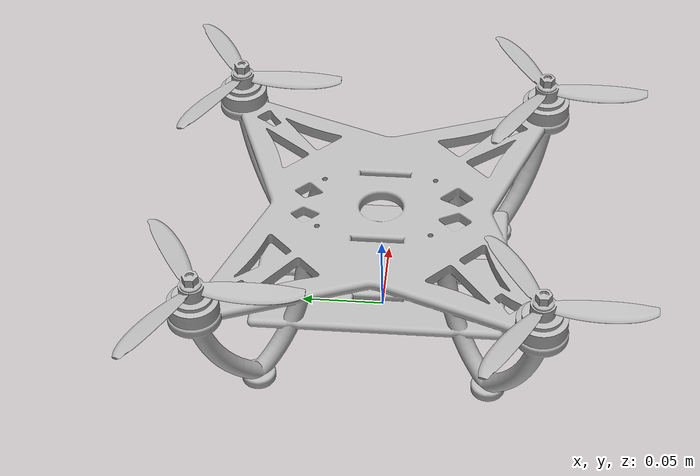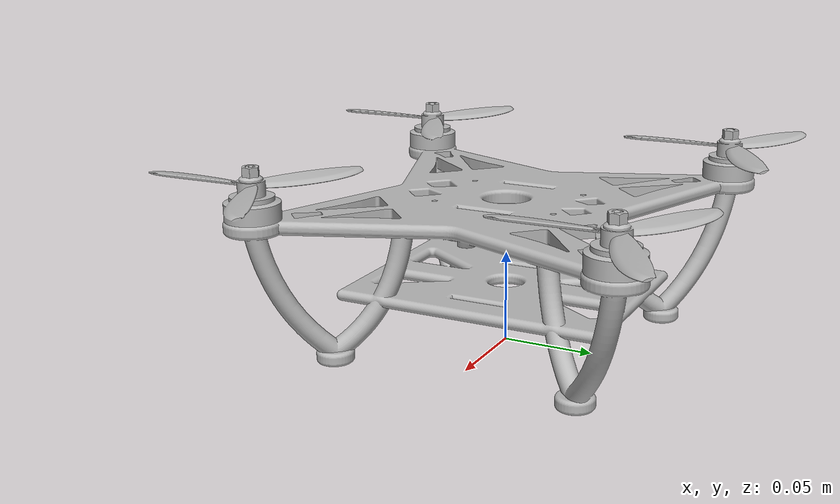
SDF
<sdf version='1.6'>
  <model name='quadrotor/quadrotor'>
    <link name='frame'>
      <pose frame=''>0 0 0 0 -0 0</pose>
      <inertial>
        <pose frame=''>-0.052259 0.052259 0.041994 0 -0 0</pose>
        <mass>0.129239</mass>
        <inertia>
          <ixx>0.0013316</ixx>
          <ixy>0.000389941</ixy>
          <ixz>-0.000283206</ixz>
          <iyy>0.0013303</iyy>
          <iyz>0.000284041</iyz>
          <izz>0.00219867</izz>
        </inertia>
      </inertial>
      <collision name='frame_collision'>
        <pose frame=''>-0.11 0.11 0 1.5708 -0 0</pose>
        <geometry>
          <mesh>
            <scale>0.001 0.001 0.001</scale>
            <uri>$(find quad_sim)/urdf/meshes/final_frame.stl</uri>
          </mesh>
        </geometry>
      </collision>
      <collision name='frame_fixed_joint_lump__propeller_holder1_collision_1'>
        <pose frame=''>0.095 -0.095 0.08 1.5708 -0 0</pose>
        <geometry>
          <mesh>
            <scale>0.001 0.001 0.001</scale>
            <uri>$(find quad_sim)/quad_sim/urdf/meshes/KV2540_Motor_Base.stl</uri>
          </mesh>
        </geometry>
      </collision>
      <collision name='frame_fixed_joint_lump__propeller_holder2_collision_2'>
        <pose frame=''>-0.095 0.095 0.08 1.5708 -0 0</pose>
        <geometry>
          <mesh>
            <scale>0.001 0.001 0.001</scale>
            <uri>$(find quad_sim)/urdf/meshes/KV2540_Motor_Base.stl</uri>
          </mesh>
        </geometry>
      </collision>
      <collision name='frame_fixed_joint_lump__propeller_holder3_collision_3'>
        <pose frame=''>0.095 0.095 0.08 1.5708 -0 0</pose>
        <geometry>
          <mesh>
            <scale>0.001 0.001 0.001</scale>
            <uri>$(find quad_sim)/urdf/meshes/KV2540_Motor_Base.stl</uri>
          </mesh>
        </geometry>
      </collision>
      <collision name='frame_fixed_joint_lump__propeller_holder4_collision_4'>
        <pose frame=''>-0.095 -0.095 0.08 1.5708 -0 0</pose>
        <geometry>
          <mesh>
            <scale>0.001 0.001 0.001</scale>
            <uri>$(find quad_sim)/urdf/meshes/KV2540_Motor_Base.stl</uri>
          </mesh>
        </geometry>
      </collision>
      <visual name='frame_visual'>
        <pose frame=''>-0.11 0.11 0 1.5708 -0 0</pose>
        <geometry>
          <mesh>
            <scale>0.001 0.001 0.001</scale>
            <uri>/home/nptttn/senior_project/quad_sim/src/quad_sim/urdf/meshes/final_frame.stl</uri>
          </mesh>
        </geometry>
      </visual>
      <visual name='frame_fixed_joint_lump__propeller_holder1_visual_1'>
        <pose frame=''>0.095 -0.095 0.08 1.5708 -0 0</pose>
        <geometry>
          <mesh>
            <scale>0.001 0.001 0.001</scale>
            <uri>/home/nptttn/senior_project/quad_sim/src/quad_sim/urdf/meshes/KV2540_Motor_Base.stl</uri>
          </mesh>
        </geometry>
      </visual>
      <visual name='frame_fixed_joint_lump__propeller_holder2_visual_2'>
        <pose frame=''>-0.095 0.095 0.08 1.5708 -0 0</pose>
        <geometry>
          <mesh>
            <scale>0.001 0.001 0.001</scale>
            <uri>/home/nptttn/senior_project/quad_sim/src/quad_sim/urdf/meshes/KV2540_Motor_Base.stl</uri>
          </mesh>
        </geometry>
      </visual>
      <visual name='frame_fixed_joint_lump__propeller_holder3_visual_3'>
        <pose frame=''>0.095 0.095 0.08 1.5708 -0 0</pose>
        <geometry>
          <mesh>
            <scale>0.001 0.001 0.001</scale>
            <uri>/home/nptttn/senior_project/quad_sim/src/quad_sim/urdf/meshes/KV2540_Motor_Base.stl</uri>
          </mesh>
        </geometry>
      </visual>
      <visual name='frame_fixed_joint_lump__propeller_holder4_visual_4'>
        <pose frame=''>-0.095 -0.095 0.08 1.5708 -0 0</pose>
        <geometry>
          <mesh>
            <scale>0.001 0.001 0.001</scale>
            <uri>/home/nptttn/senior_project/quad_sim/src/quad_sim/urdf/meshes/KV2540_Motor_Base.stl</uri>
          </mesh>
        </geometry>
      </visual>
    </link>
    <link name='propeller1'>
      <pose frame=''>0.095 -0.095 0.081 1.5708 -0 0</pose>
      <inertial>
        <pose frame=''>0 0 0 0 -0 0</pose>
        <mass>0.01696</mass>
        <inertia>
          <ixx>3.962e-06</ixx>
          <ixy>0</ixy>
          <ixz>-8.233e-10</ixz>
          <iyy>6.1e-06</iyy>
          <iyz>0</iyz>
          <izz>6.716e-06</izz>
        </inertia>
      </inertial>
      <collision name='propeller1_collision'>
        <pose frame=''>0 0 0 0 -0 0</pose>
        <geometry>
          <mesh>
            <scale>0.001 0.001 0.001</scale>
            <uri>/home/nptttn/senior_project/quad_sim/src/quad_sim/urdf/meshes/KV2540_Motor_Propeller_holder.stl</uri>
          </mesh>
        </geometry>
      </collision>
      <visual name='propeller1_visual'>
        <pose frame=''>0 0 0 0 -0 0</pose>
        <geometry>
          <mesh>
            <scale>0.001 0.001 0.001</scale>
            <uri>/home/nptttn/senior_project/quad_sim/src/quad_sim/urdf/meshes/KV2540_Motor_Propeller_holder.stl</uri>
          </mesh>
        </geometry>
      </visual>
    </link>
    <joint name='propeller_base_propeller1' type='revolute'>
      <child>propeller1</child>
      <parent>frame</parent>
      <axis>
        <xyz>0 0 1</xyz>
        <limit>
          <lower>-1e+16</lower>
          <upper>1e+16</upper>
        </limit>
        <dynamics>
          <damping>0.0004</damping>
          <friction>0</friction>
          <spring_reference>0</spring_reference>
          <spring_stiffness>0</spring_stiffness>
        </dynamics>
        <use_parent_model_frame>1</use_parent_model_frame>
      </axis>
    </joint>
    <link name='propeller2'>
      <pose frame=''>-0.095 0.095 0.081 1.5708 -0 0</pose>
      <inertial>
        <pose frame=''>0 0 0 0 -0 0</pose>
        <mass>0.01696</mass>
        <inertia>
          <ixx>3.962e-06</ixx>
          <ixy>0</ixy>
          <ixz>-8.233e-10</ixz>
          <iyy>6.1e-06</iyy>
          <iyz>0</iyz>
          <izz>6.716e-06</izz>
        </inertia>
      </inertial>
      <collision name='propeller2_collision'>
        <pose frame=''>0 0 0 0 -0 0</pose>
        <geometry>
          <mesh>
            <scale>0.001 0.001 0.001</scale>
            <uri>/home/nptttn/senior_project/quad_sim/src/quad_sim/urdf/meshes/KV2540_Motor_Propeller_holder.stl</uri>
          </mesh>
        </geometry>
      </collision>
      <visual name='propeller2_visual'>
        <pose frame=''>0 0 0 0 -0 0</pose>
        <geometry>
          <mesh>
            <scale>0.001 0.001 0.001</scale>
            <uri>/home/nptttn/senior_project/quad_sim/src/quad_sim/urdf/meshes/KV2540_Motor_Propeller_holder.stl</uri>
          </mesh>
        </geometry>
      </visual>
    </link>
    <joint name='propeller_base_propeller2' type='revolute'>
      <child>propeller2</child>
      <parent>frame</parent>
      <axis>
        <xyz>0 0 1</xyz>
        <limit>
          <lower>-1e+16</lower>
          <upper>1e+16</upper>
        </limit>
        <dynamics>
          <damping>0.0004</damping>
          <friction>0</friction>
          <spring_reference>0</spring_reference>
          <spring_stiffness>0</spring_stiffness>
        </dynamics>
        <use_parent_model_frame>1</use_parent_model_frame>
      </axis>
    </joint>
    <link name='propeller3'>
      <pose frame=''>0.095 0.095 0.081 1.5708 -0 0</pose>
      <inertial>
        <pose frame=''>0 0 0 0 -0 0</pose>
        <mass>0.01696</mass>
        <inertia>
          <ixx>3.962e-06</ixx>
          <ixy>0</ixy>
          <ixz>-8.233e-10</ixz>
          <iyy>6.1e-06</iyy>
          <iyz>0</iyz>
          <izz>6.716e-06</izz>
        </inertia>
      </inertial>
      <collision name='propeller3_collision'>
        <pose frame=''>0 0 0 0 -0 0</pose>
        <geometry>
          <mesh>
            <scale>0.001 0.001 0.001</scale>
            <uri>/home/nptttn/senior_project/quad_sim/src/quad_sim/urdf/meshes/KV2540_Motor_Propeller_holder.stl</uri>
          </mesh>
        </geometry>
      </collision>
      <visual name='propeller3_visual'>
        <pose frame=''>0 0 0 0 -0 0</pose>
        <geometry>
          <mesh>
            <scale>0.001 0.001 0.001</scale>
            <uri>/home/nptttn/senior_project/quad_sim/src/quad_sim/urdf/meshes/KV2540_Motor_Propeller_holder.stl</uri>
          </mesh>
        </geometry>
      </visual>
    </link>
    <joint name='propeller_base_propeller3' type='revolute'>
      <child>propeller3</child>
      <parent>frame</parent>
      <axis>
        <xyz>0 0 1</xyz>
        <limit>
          <lower>-1e+16</lower>
          <upper>1e+16</upper>
        </limit>
        <dynamics>
          <damping>0.0004</damping>
          <friction>0</friction>
          <spring_reference>0</spring_reference>
          <spring_stiffness>0</spring_stiffness>
        </dynamics>
        <use_parent_model_frame>1</use_parent_model_frame>
      </axis>
    </joint>
    <link name='propeller4'>
      <pose frame=''>-0.095 -0.095 0.081 1.5708 -0 0</pose>
      <inertial>
        <pose frame=''>0 0 0 0 -0 0</pose>
        <mass>0.01696</mass>
        <inertia>
          <ixx>3.962e-06</ixx>
          <ixy>0</ixy>
          <ixz>-8.233e-10</ixz>
          <iyy>6.1e-06</iyy>
          <iyz>0</iyz>
          <izz>6.716e-06</izz>
        </inertia>
      </inertial>
      <collision name='propeller4_collision'>
        <pose frame=''>0 0 0 0 -0 0</pose>
        <geometry>
          <mesh>
            <scale>0.001 0.001 0.001</scale>
            <uri>/home/nptttn/senior_project/quad_sim/src/quad_sim/urdf/meshes/KV2540_Motor_Propeller_holder.stl</uri>
          </mesh>
        </geometry>
      </collision>
      <visual name='propeller4_visual'>
        <pose frame=''>0 0 0 0 -0 0</pose>
        <geometry>
          <mesh>
            <scale>0.001 0.001 0.001</scale>
            <uri>/home/nptttn/senior_project/quad_sim/src/quad_sim/urdf/meshes/KV2540_Motor_Propeller_holder.stl</uri>
          </mesh>
        </geometry>
      </visual>
    </link>
    <joint name='propeller_base_propeller4' type='revolute'>
      <child>propeller4</child>
      <parent>frame</parent>
      <axis>
        <xyz>0 0 1</xyz>
        <limit>
          <lower>-1e+16</lower>
          <upper>1e+16</upper>
        </limit>
        <dynamics>
          <damping>0.0004</damping>
          <friction>0</friction>
          <spring_reference>0</spring_reference>
          <spring_stiffness>0</spring_stiffness>
        </dynamics>
        <use_parent_model_frame>1</use_parent_model_frame>
      </axis>
    </joint>
    <static>0</static>
    <plugin name='quad_liftforce_plugins' filename='libquad_liftforce_plugins.so'>
      <robotNamespace>quad_sim</robotNamespace>
      <propeller1_link>propeller1</propeller1_link>
      <propeller2_link>propeller2</propeller2_link>
      <propeller3_link>propeller3</propeller3_link>
      <propeller4_link>propeller4</propeller4_link>
      <topicName>throttle</topicName>
    </plugin>
  </model>
</sdf>
